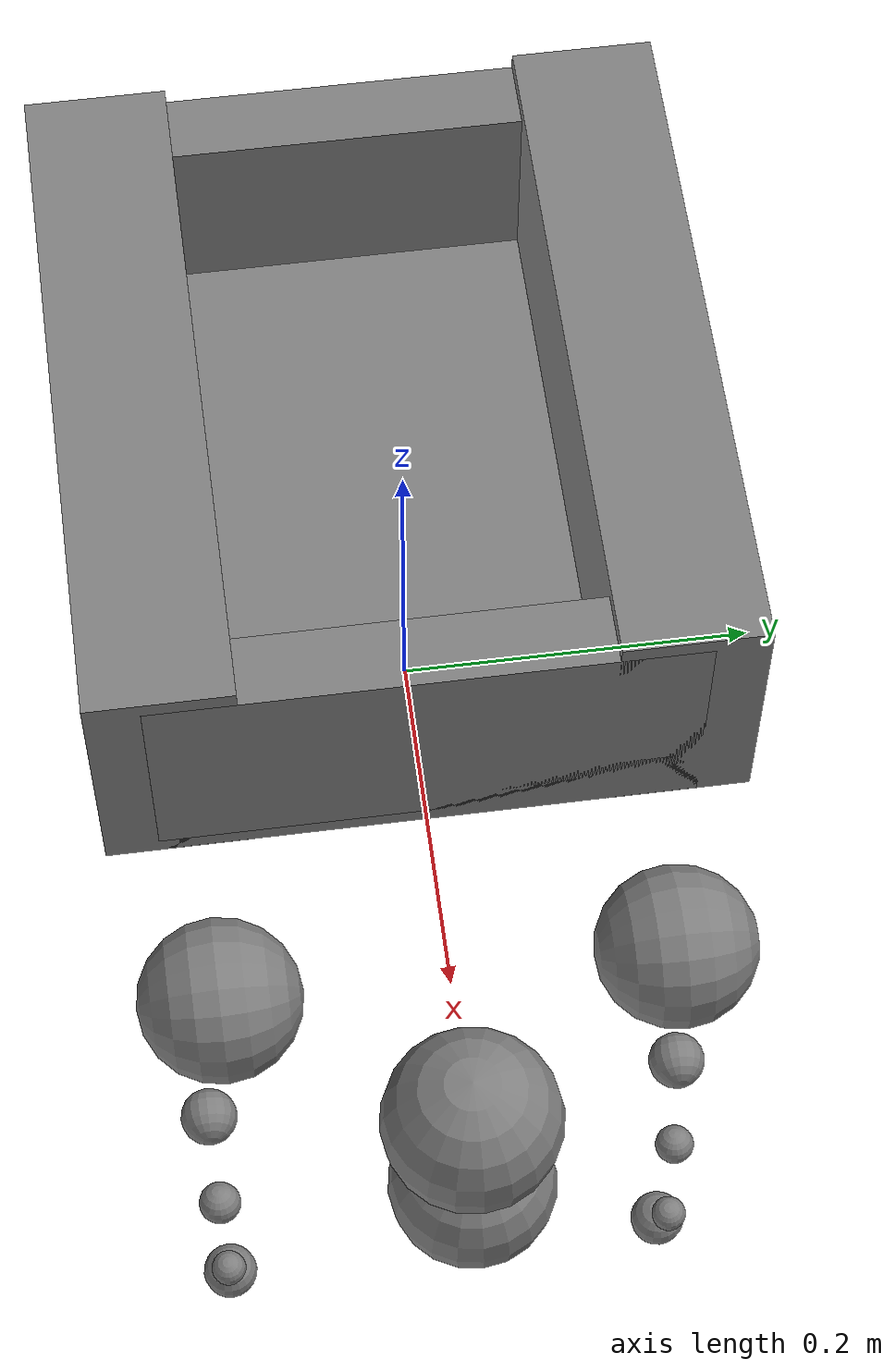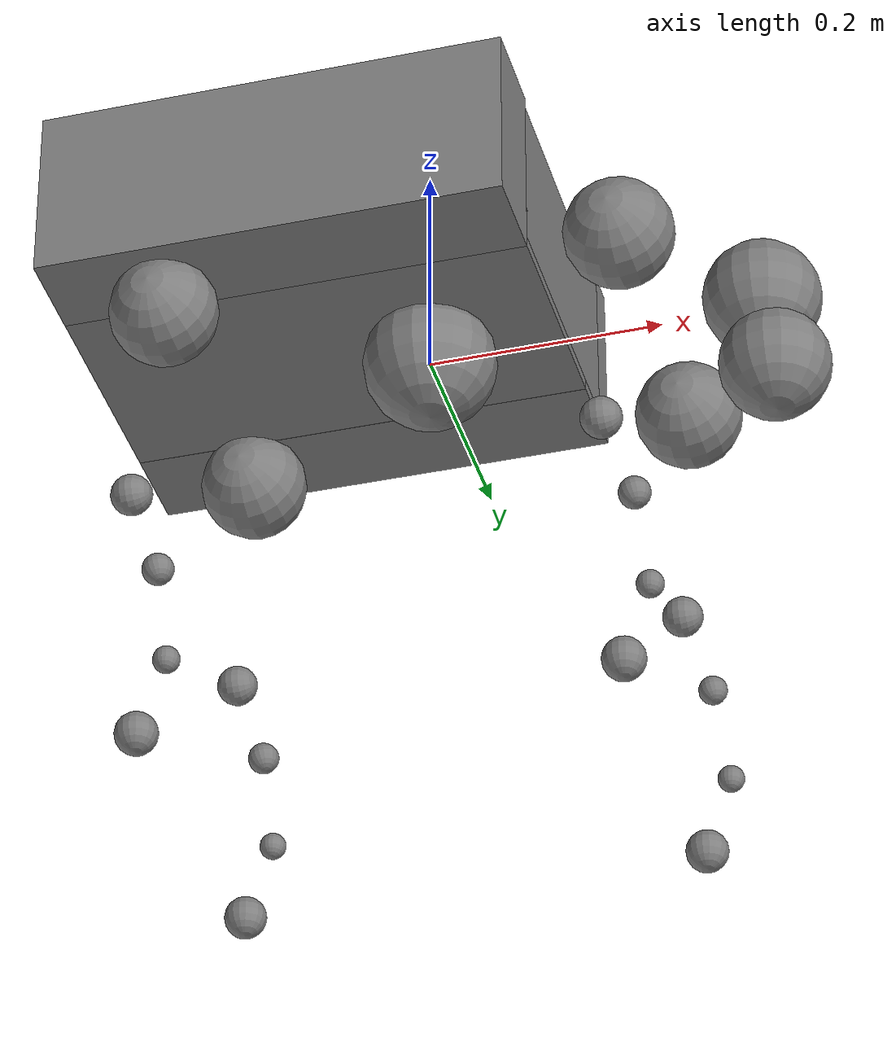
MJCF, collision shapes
<mujoco model="go2">
    <compiler angle="radian" meshdir="assets" autolimits="true"/>

    <custom>
        <numeric data="30" name="max_contact_points"/>
        <numeric data="12" name="max_geom_pairs"/>
    </custom>

    <default>
        <default class="go2">
            <geom condim="1"/>
            <joint axis="0 1 0" damping="2" armature="0.01"/>
            <general forcerange="-24 24" biastype="affine" gainprm="50 0 0" biasprm="0 -50 -0.5"/>

            <default class="abduction">
                <joint axis="1 0 0" range="-1.0472 1.0472"/>
                <general ctrlrange="-0.9472 0.9472"/>
            </default>
            <default class="hip">
                <joint range="-1.5708 3.4907"/>
                <general ctrlrange="-1.4 2.5"/>
            </default>
            <default class="knee">
                <joint range="-2.7227 -0.83776"/>
                <general ctrlrange="-2.6227 -0.84776"/>
            </default>
            <default class="visual">
                <geom type="mesh" contype="0" conaffinity="0" group="2"/>
            </default>
            <default class="go2foot">
                <site pos="0 0 -0.213" type="sphere" size="0.023" group="5"/>
                <geom rgba="0.231373 0.380392 0.705882 1"/>
            </default>
            <default class="collision">
                <geom group="3"/>
                <default class="foot">
                    <geom type="sphere" size="0.0175" pos="-0.002 0 -0.213" solimp="0.9 .95 0.023" condim="3"/>
                </default>
                <default class="box_collision">
                    <geom type="box" solimp="0.9 .95 0.023"/>
                </default>
            </default>
        </default>
    </default>

    <asset>
        <material name="metal" rgba=".9 .95 .95 1"/>
        <material name="black" rgba="0 0 0 1"/>
        <material name="white" rgba="1 1 1 1"/>
        <material name="gray" rgba="0.671705 0.692426 0.774270 1"/>
        <texture name="basecolor_2" type="2d" file="assets/basecolor_2.png" />
        <material name="tagStandard52h13-777" texture="basecolor_2" texrepeat="1 1" texuniform="true"/>

        <mesh file="base_0.obj"/>
        <mesh file="base_1.obj"/>
        <mesh file="base_2.obj"/>
        <mesh file="base_3.obj"/>
        <mesh file="base_4.obj"/>
        <mesh file="hip_0.obj"/>
        <mesh file="hip_1.obj"/>
        <mesh file="thigh_0.obj"/>
        <mesh file="thigh_1.obj"/>
        <mesh file="thigh_mirror_0.obj"/>
        <mesh file="thigh_mirror_1.obj"/>
        <mesh file="calf_0.obj"/>
        <mesh file="calf_1.obj"/>
        <mesh file="calf_mirror_0.obj"/>
        <mesh file="calf_mirror_1.obj"/>
        <mesh file="foot.obj"/>
        <mesh file="tagStandard52h13-777.obj"/>
        <mesh file="container.obj"/>
        <mesh file="container_bottom.obj"/>
        <mesh file="container_front.obj"/>
        <mesh file="container_back.obj"/>
        <mesh file="container_left.obj"/>
        <mesh file="container_right.obj"/>

    </asset>

    <worldbody>
        <body name="base" pos="0 0 0" childclass="go2">
            <camera name="track" pos="0.846 -1.465 0.916" xyaxes="0.866 0.500 0.000 -0.171 0.296 0.940"
                    mode="trackcom"/>
            <inertial pos="0.021112 0 -0.005366" quat="-0.000543471 0.713435 -0.00173769 0.700719" mass="6.921"
                      diaginertia="0.107027 0.0980771 0.0244531"/>
            <geom mesh="base_0" material="black" class="visual"/>
            <geom mesh="base_1" material="black" class="visual"/>
            <geom mesh="base_2" material="black" class="visual"/>
            <geom mesh="base_3" material="white" class="visual"/>
            <geom mesh="base_4" material="gray" class="visual"/>
            <geom mesh="tagStandard52h13-777" class="visual" pos="0.22 0 0.09" material="tagStandard52h13-777"/>
            <geom mesh="container" class="visual" pos="-0.09 0 0.115" />
            <geom type="box" size = "0.2 0.15 0.02" pos="-0.09 0 0.0455" class="box_collision"/>
            <geom type="box" size = "0.02 0.15 0.07" pos="0.09 0 0.10525" class="box_collision"/>
            <geom type="box" size = "0.02 0.15 0.07" pos="-0.27 0 0.10525" class="box_collision"/>
            <geom type="box" size = "0.2 0.04 0.08" pos="-0.09 -0.14 0.10525" class="box_collision"/>
            <geom type="box" size = "0.2 0.04 0.08" pos="-0.09 0.14 0.10525" class="box_collision"/>

            <geom size="0.057 0.04675 0.057" class="collision"/>
            <geom size="0.05 0.045" pos="0.285 0 0.01" class="collision"/>
            <geom size="0.047" pos="0.293 0 -0.06" class="collision"/>
            <site name="imu" pos="-0.02557 0 0.04232"/>
            <body name="FL_hip" pos="0.1934 0.0465 0">
                <inertial pos="-0.0054 0.00194 -0.000105" quat="0.497014 0.499245 0.505462 0.498237" mass="0.678"
                          diaginertia="0.00088403 0.000596003 0.000479967"/>
                <joint name="FL_hip_joint" class="abduction"/>
                <geom mesh="hip_0" material="metal" class="visual"/>
                <geom mesh="hip_1" material="gray" class="visual"/>
                <geom name="fl_hip_0" size="0.046 0.02" pos="0 0.08 0" quat="1 1 0 0" class="collision"/>
                <body name="FL_thigh" pos="0 0.0955 0">
                    <inertial pos="-0.00374 -0.0223 -0.0327" quat="0.829533 0.0847635 -0.0200632 0.551623" mass="1.152"
                              diaginertia="0.00594973 0.00584149 0.000878787"/>
                    <joint name="FL_thigh_joint" class="hip"/>
                    <geom mesh="thigh_0" material="metal" class="visual"/>
                    <geom mesh="thigh_1" material="gray" class="visual"/>
                    <geom name="fl_thigh_0" size="0.017 0.01225 0.017" pos="-0.015 0 -0.1955"
                          quat="0.707107 0 0.707107 0" class="collision"/>
                    <body name="FL_calf" pos="0 0 -0.213">
                        <inertial pos="0.00629595 -0.000622121 -0.141417"
                                  quat="0.710672 0.00154099 -0.00450087 0.703508"
                                  mass="0.241352" diaginertia="0.0014901 0.00146356 5.31397e-05"/>
                        <joint name="FL_calf_joint" class="knee"/>
                        <geom mesh="calf_0" material="gray" class="visual"/>
                        <geom mesh="calf_1" material="black" class="visual"/>
                        <geom name="fl_calf_0" size="0.012 0.06" pos="0.008 0 -0.06" quat="0.994493 0 -0.104807 0"
                              class="collision"/>
                        <geom name="fl_calf_1" size="0.011 0.0325" pos="0.02 0 -0.148" quat="0.999688 0 0.0249974 0"
                              class="collision"/>
                        <geom pos="0 0 -0.213" mesh="foot" class="visual" material="black"/>
                        <geom name="FL" class="foot"/>
                        <site name="FL" class="go2foot"/>
                    </body>
                </body>
            </body>
            <body name="FR_hip" pos="0.1934 -0.0465 0">
                <inertial pos="-0.0054 -0.00194 -0.000105" quat="0.498237 0.505462 0.499245 0.497014" mass="0.678"
                          diaginertia="0.00088403 0.000596003 0.000479967"/>
                <joint name="FR_hip_joint" class="abduction"/>
                <geom mesh="hip_0" material="metal" class="visual" quat="4.63268e-05 1 0 0"/>
                <geom mesh="hip_1" material="gray" class="visual" quat="4.63268e-05 1 0 0"/>
                <geom name="fr_hip_0" size="0.046 0.02" pos="0 -0.08 0" quat="0.707107 0.707107 0 0" class="collision"/>
                <body name="FR_thigh" pos="0 -0.0955 0">
                    <inertial pos="-0.00374 0.0223 -0.0327" quat="0.551623 -0.0200632 0.0847635 0.829533" mass="1.152"
                              diaginertia="0.00594973 0.00584149 0.000878787"/>
                    <joint name="FR_thigh_joint" class="hip"/>
                    <geom mesh="thigh_mirror_0" material="metal" class="visual"/>
                    <geom mesh="thigh_mirror_1" material="gray" class="visual"/>
                    <geom name="fr_thigh_0" size="0.017 0.01225 0.017" pos="-0.015 0 -0.1955"
                          quat="0.707107 0 0.707107 0" class="collision"/>
                    <body name="FR_calf" pos="0 0 -0.213">
                        <inertial pos="0.00629595 0.000622121 -0.141417" quat="0.703508 -0.00450087 0.00154099 0.710672"
                                  mass="0.241352" diaginertia="0.0014901 0.00146356 5.31397e-05"/>
                        <joint name="FR_calf_joint" class="knee"/>
                        <geom mesh="calf_mirror_0" material="gray" class="visual"/>
                        <geom mesh="calf_mirror_1" material="black" class="visual"/>
                        <geom name="fr_calf_0" size="0.013 0.06" pos="0.01 0 -0.06" quat="0.995004 0 -0.0998334 0"
                              class="collision"/>
                        <geom name="fr_calf_1" size="0.011 0.0325" pos="0.02 0 -0.148" quat="0.999688 0 0.0249974 0"
                              class="collision"/>
                        <geom pos="0 0 -0.213" mesh="foot" class="visual" material="black"/>
                        <geom name="FR" class="foot"/>
                        <site name="FR" class="go2foot"/>
                    </body>
                </body>
            </body>
            <body name="RL_hip" pos="-0.1934 0.0465 0">
                <inertial pos="0.0054 0.00194 -0.000105" quat="0.505462 0.498237 0.497014 0.499245" mass="0.678"
                          diaginertia="0.00088403 0.000596003 0.000479967"/>
                <joint name="RL_hip_joint" class="abduction"/>
                <geom mesh="hip_0" material="metal" class="visual" quat="4.63268e-05 0 1 0"/>
                <geom mesh="hip_1" material="gray" class="visual" quat="4.63268e-05 0 1 0"/>
                <geom name="rl_hip_0" size="0.046 0.02" pos="0 0.08 0" quat="0.707107 0.707107 0 0" class="collision"/>
                <body name="RL_thigh" pos="0 0.0955 0">
                    <inertial pos="-0.00374 -0.0223 -0.0327" quat="0.829533 0.0847635 -0.0200632 0.551623" mass="1.152"
                              diaginertia="0.00594973 0.00584149 0.000878787"/>
                    <joint name="RL_thigh_joint" class="hip"/>
                    <geom mesh="thigh_0" material="metal" class="visual"/>
                    <geom mesh="thigh_1" material="gray" class="visual"/>
                    <geom name="rl_thigh_0" size="0.017 0.01225 0.017" pos="-0.015 0 -0.1955"
                          quat="0.707107 0 0.707107 0" class="collision"/>
                    <body name="RL_calf" pos="0 0 -0.213">
                        <inertial pos="0.00629595 -0.000622121 -0.141417"
                                  quat="0.710672 0.00154099 -0.00450087 0.703508"
                                  mass="0.241352" diaginertia="0.0014901 0.00146356 5.31397e-05"/>
                        <joint name="RL_calf_joint" class="knee"/>
                        <geom mesh="calf_0" material="gray" class="visual"/>
                        <geom mesh="calf_1" material="black" class="visual"/>
                        <geom name="rl_calf_0" size="0.013 0.06" pos="0.01 0 -0.06" quat="0.995004 0 -0.0998334 0"
                              class="collision"/>
                        <geom name="rl_calf_1" size="0.011 0.0325" pos="0.02 0 -0.148" quat="0.999688 0 0.0249974 0"
                              class="collision"/>
                        <geom pos="0 0 -0.213" mesh="foot" class="visual" material="black"/>
                        <geom name="RL" class="foot"/>
                        <site name="RL" class="go2foot"/>
                    </body>
                </body>
            </body>
            <body name="RR_hip" pos="-0.1934 -0.0465 0">
                <inertial pos="0.0054 -0.00194 -0.000105" quat="0.499245 0.497014 0.498237 0.505462" mass="0.678"
                          diaginertia="0.00088403 0.000596003 0.000479967"/>
                <joint name="RR_hip_joint" class="abduction"/>
                <geom mesh="hip_0" material="metal" class="visual" quat="2.14617e-09 4.63268e-05 4.63268e-05 -1"/>
                <geom mesh="hip_1" material="gray" class="visual" quat="2.14617e-09 4.63268e-05 4.63268e-05 -1"/>
                <geom name="rr_hip_0" size="0.046 0.02" pos="0 -0.08 0" quat="0.707107 0.707107 0 0" class="collision"/>
                <body name="RR_thigh" pos="0 -0.0955 0">
                    <inertial pos="-0.00374 0.0223 -0.0327" quat="0.551623 -0.0200632 0.0847635 0.829533" mass="1.152"
                              diaginertia="0.00594973 0.00584149 0.000878787"/>
                    <joint name="RR_thigh_joint" class="hip"/>
                    <geom mesh="thigh_mirror_0" material="metal" class="visual"/>
                    <geom mesh="thigh_mirror_1" material="gray" class="visual"/>
                    <geom name="rr_thigh_0" size="0.017 0.01225 0.017" pos="-0.015 0 -0.1955"
                          quat="0.707107 0 0.707107 0" class="collision"/>
                    <body name="RR_calf" pos="0 0 -0.213">
                        <inertial pos="0.00629595 0.000622121 -0.141417" quat="0.703508 -0.00450087 0.00154099 0.710672"
                                  mass="0.241352" diaginertia="0.0014901 0.00146356 5.31397e-05"/>
                        <joint name="RR_calf_joint" class="knee"/>
                        <geom mesh="calf_mirror_0" material="gray" class="visual"/>
                        <geom mesh="calf_mirror_1" material="black" class="visual"/>
                        <geom name="rr_calf_0" size="0.013 0.06" pos="0.01 0 -0.06" quat="0.995004 0 -0.0998334 0"
                              class="collision"/>
                        <geom name="rr_calf_1" size="0.011 0.0325" pos="0.02 0 -0.148" quat="0.999688 0 0.0249974 0"
                              class="collision"/>
                        <geom pos="0 0 -0.213" mesh="foot" class="visual" material="black"/>
                        <geom name="RR" class="foot"/>
                        <site name="RR" class="go2foot"/>
                    </body>
                </body>
            </body>
        </body>
    </worldbody>

    <actuator>
        <general class="abduction" name="FL_hip" joint="FL_hip_joint"/>
        <general class="hip" name="FL_thigh" joint="FL_thigh_joint"/>
        <general class="knee" name="FL_calf" joint="FL_calf_joint"/>
        <general class="abduction" name="FR_hip" joint="FR_hip_joint"/>
        <general class="hip" name="FR_thigh" joint="FR_thigh_joint"/>
        <general class="knee" name="FR_calf" joint="FR_calf_joint"/>
        <general class="abduction" name="RL_hip" joint="RL_hip_joint"/>
        <general class="hip" name="RL_thigh" joint="RL_thigh_joint"/>
        <general class="knee" name="RL_calf" joint="RL_calf_joint"/>
        <general class="abduction" name="RR_hip" joint="RR_hip_joint"/>
        <general class="hip" name="RR_thigh" joint="RR_thigh_joint"/>
        <general class="knee" name="RR_calf" joint="RR_calf_joint"/>
    </actuator>

    <sensor>
        <jointpos joint="FL_hip_joint" name="abduction_front_left_pos"/>
        <jointpos joint="FL_thigh_joint" name="hip_front_left_pos"/>
        <jointpos joint="FL_calf_joint" name="knee_front_left_pos"/>
        <jointpos joint="RL_hip_joint" name="abduction_hind_left_pos"/>
        <jointpos joint="RL_thigh_joint" name="hip_hind_left_pos"/>
        <jointpos joint="RL_calf_joint" name="knee_hind_left_pos"/>
        <jointpos joint="FR_hip_joint" name="abduction_front_right_pos"/>
        <jointpos joint="FR_thigh_joint" name="hip_front_right_pos"/>
        <jointpos joint="FR_calf_joint" name="knee_front_right_pos"/>
        <jointpos joint="RR_hip_joint" name="abduction_hind_right_pos"/>
        <jointpos joint="RR_thigh_joint" name="hip_hind_right_pos"/>
        <jointpos joint="RR_calf_joint" name="knee_hind_right_pos"/>
        <jointvel joint="FL_hip_joint" name="abduction_front_left_vel"/>
        <jointvel joint="FL_thigh_joint" name="hip_front_left_vel"/>
        <jointvel joint="FL_calf_joint" name="knee_front_left_vel"/>
        <jointvel joint="RL_hip_joint" name="abduction_hind_left_vel"/>
        <jointvel joint="RL_thigh_joint" name="hip_hind_left_vel"/>
        <jointvel joint="RL_calf_joint" name="knee_hind_left_vel"/>
        <jointvel joint="FR_hip_joint" name="abduction_front_right_vel"/>
        <jointvel joint="FR_thigh_joint" name="hip_front_right_vel"/>
        <jointvel joint="FR_calf_joint" name="knee_front_right_vel"/>
        <jointvel joint="RR_hip_joint" name="abduction_hind_right_vel"/>
        <jointvel joint="RR_thigh_joint" name="hip_hind_right_vel"/>
        <jointvel joint="RR_calf_joint" name="knee_hind_right_vel"/>

        <gyro site="imu" name="gyro"/>
        <accelerometer site="imu" name="accelerometer"/>
        <velocimeter site="imu" name="local_linvel"/>
        <framezaxis objtype="site" objname="imu" name="upvector"/>
        <framequat objtype="site" objname="imu" name="orientation"/>
        <framepos objtype="site" objname="imu" name="global_position"/>
        <framelinvel objtype="site" objname="imu" name="global_linvel"/>
        <frameangvel objtype="site" objname="imu" name="global_angvel"/>

        <framelinvel objtype="site" objname="FR" name="FR_global_linvel"/>
        <framelinvel objtype="site" objname="FL" name="FL_global_linvel"/>
        <framelinvel objtype="site" objname="RR" name="RR_global_linvel"/>
        <framelinvel objtype="site" objname="RL" name="RL_global_linvel"/>

        <framepos objtype="site" objname="FR" name="FR_pos" reftype="site" refname="imu"/>
        <framepos objtype="site" objname="FL" name="FL_pos" reftype="site" refname="imu"/>
        <framepos objtype="site" objname="RR" name="RR_pos" reftype="site" refname="imu"/>
        <framepos objtype="site" objname="RL" name="RL_pos" reftype="site" refname="imu"/>
    </sensor>
</mujoco>
